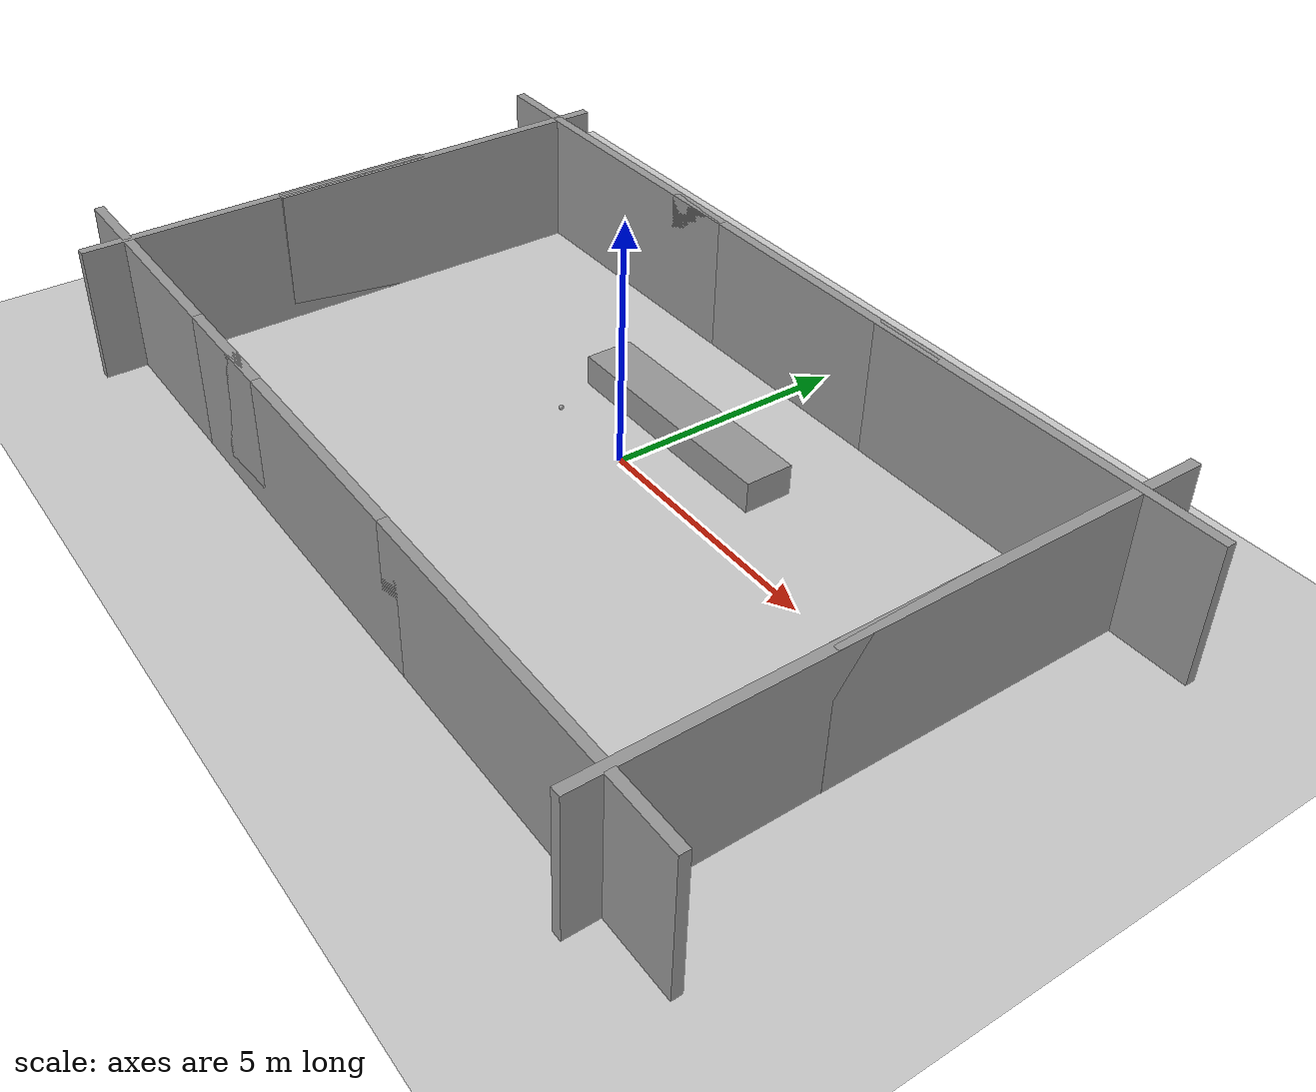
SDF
<sdf version="1.4">
 <world name="default">
  <light name="sun" type="directional">
   <pose>0 0 10 0 -0 0</pose>
   <diffuse>0.8 0.8 0.8 1</diffuse>
   <specular>0.2 0.2 0.2 1</specular>
   <attenuation>
    <range>1000</range>
    <constant>0.9</constant>
    <linear>0.01</linear>
    <quadratic>0.001</quadratic>
   </attenuation>
   <direction>-0.5 0.1 -0.9</direction>
  </light>
  <model name="ground_plane">
   <static>1</static>
   <link name="link">
    <collision name="collision">
     <geometry><plane><normal>0 0 1</normal><size>100 100</size></plane></geometry>
     <surface><friction><ode><mu>100</mu><mu2>50</mu2></ode></friction></surface>
    </collision>
    <visual name="visual">
     <cast_shadows>0</cast_shadows>
     <geometry><plane><normal>0 0 1</normal><size>100 100</size></plane></geometry>
     <material>
      <script><uri>file://media/materials/scripts/gazebo.material</uri><name>Gazebo/Grey</name></script>
     </material>
    </visual>
    <velocity_decay><linear>0</linear><angular>0</angular></velocity_decay>
   </link>
  </model>
  <physics type="ode">
   <max_step_size>0.001</max_step_size>
   <real_time_factor>1</real_time_factor>
   <real_time_update_rate>1000</real_time_update_rate>
   <gravity>0 0 -9.8</gravity>
  </physics>
  <scene><ambient>0.4 0.4 0.4 1</ambient><background>0.7 0.7 0.7 1</background><shadows>1</shadows></scene>
  <spherical_coordinates>
   <surface_model>EARTH_WGS84</surface_model>
   <latitude_deg>0</latitude_deg>
   <longitude_deg>0</longitude_deg>
   <elevation>0</elevation>
   <heading_deg>0</heading_deg>
  </spherical_coordinates>
  <model name="unit_box_1">
   <static>1</static>
   <pose>0 1.46582 0.262593 0 -0 0</pose>
   <link name="link">
    <inertial>
     <mass>100</mass>
     <inertia><ixx>17</ixx><ixy>0</ixy><ixz>0</ixz><iyy>17</iyy><iyz>0</iyz><izz>17</izz></inertia>
    </inertial>
    <collision name="collision"><geometry><box><size>5 1 0.7</size></box></geometry></collision>
    <visual name="visual">
     <geometry><box><size>5 1 0.7</size></box></geometry>
     <material>
      <script><uri>file://media/materials/scripts/gazebo.material</uri><name>Gazebo/Grey</name></script>
     </material>
    </visual>
    <velocity_decay><linear>0</linear><angular>0</angular></velocity_decay>
   </link>
  </model>
  <model name="grey_wall">
   <static>1</static>
   <link name="link">
    <pose>0 0 1.4 0 -0 0</pose>
    <collision name="collision">
     <geometry><box><size>7.5 0.2 2.8</size></box></geometry>
     <surface>
      <friction>
       <ode><mu>0.01</mu><mu2>0.01</mu2><fdir1>0 0 0</fdir1><slip1>0</slip1><slip2>0</slip2></ode>
      </friction>
     </surface>
    </collision>
    <visual name="visual">
     <cast_shadows>0</cast_shadows>
     <geometry><box><size>7.5 0.2 2.8</size></box></geometry>
     <material>
      <script>
       <uri>model://grey_wall/materials/scripts</uri>
       <uri>model://grey_wall/materials/textures</uri>
       <name>vrc/grey_wall</name>
      </script>
     </material>
    </visual>
    <velocity_decay><linear>0</linear><angular>0</angular></velocity_decay>
   </link>
   <pose>-6 4 0 0 -0 0</pose>
  </model>
  <model name="grey_wall_0">
   <static>1</static>
   <link name="link">
    <pose>0 0 1.4 0 -0 0</pose>
    <collision name="collision"><geometry><box><size>7.5 0.2 2.8</size></box></geometry></collision>
    <visual name="visual">
     <cast_shadows>0</cast_shadows>
     <geometry><box><size>7.5 0.2 2.8</size></box></geometry>
     <material>
      <script>
       <uri>model://grey_wall/materials/scripts</uri>
       <uri>model://grey_wall/materials/textures</uri>
       <name>vrc/grey_wall</name>
      </script>
     </material>
    </visual>
    <velocity_decay><linear>0</linear><angular>0</angular></velocity_decay>
   </link>
   <pose>0 4 0 0 -0 0</pose>
  </model>
  <model name="grey_wall_1">
   <static>1</static>
   <link name="link">
    <pose>0 0 1.4 0 -0 0</pose>
    <collision name="collision"><geometry><box><size>7.5 0.2 2.8</size></box></geometry></collision>
    <visual name="visual">
     <cast_shadows>0</cast_shadows>
     <geometry><box><size>7.5 0.2 2.8</size></box></geometry>
     <material>
      <script>
       <uri>model://grey_wall/materials/scripts</uri>
       <uri>model://grey_wall/materials/textures</uri>
       <name>vrc/grey_wall</name>
      </script>
     </material>
    </visual>
    <velocity_decay><linear>0</linear><angular>0</angular></velocity_decay>
   </link>
   <pose>5.97602 4.00107 0 0 -0 0.001714</pose>
  </model>
  <model name="grey_wall_2">
   <static>1</static>
   <link name="link">
    <pose>0 0 1.4 0 -0 0</pose>
    <collision name="collision"><geometry><box><size>7.5 0.2 2.8</size></box></geometry></collision>
    <visual name="visual">
     <cast_shadows>0</cast_shadows>
     <geometry><box><size>7.5 0.2 2.8</size></box></geometry>
     <material>
      <script>
       <uri>model://grey_wall/materials/scripts</uri>
       <uri>model://grey_wall/materials/textures</uri>
       <name>vrc/grey_wall</name>
      </script>
     </material>
    </visual>
    <velocity_decay><linear>0</linear><angular>0</angular></velocity_decay>
   </link>
   <pose>-6 -6 0 0 -0 0</pose>
  </model>
  <model name="grey_wall_3">
   <static>1</static>
   <link name="link">
    <pose>0 0 1.4 0 -0 0</pose>
    <collision name="collision"><geometry><box><size>7.5 0.2 2.8</size></box></geometry></collision>
    <visual name="visual">
     <cast_shadows>0</cast_shadows>
     <geometry><box><size>7.5 0.2 2.8</size></box></geometry>
     <material>
      <script>
       <uri>model://grey_wall/materials/scripts</uri>
       <uri>model://grey_wall/materials/textures</uri>
       <name>vrc/grey_wall</name>
      </script>
     </material>
    </visual>
    <velocity_decay><linear>0</linear><angular>0</angular></velocity_decay>
   </link>
   <pose>-1 -6 0 0 -0 0</pose>
  </model>
  <model name="grey_wall_4">
   <static>1</static>
   <link name="link">
    <pose>0 0 1.4 0 -0 0</pose>
    <collision name="collision"><geometry><box><size>7.5 0.2 2.8</size></box></geometry></collision>
    <visual name="visual">
     <cast_shadows>0</cast_shadows>
     <geometry><box><size>7.5 0.2 2.8</size></box></geometry>
     <material>
      <script>
       <uri>model://grey_wall/materials/scripts</uri>
       <uri>model://grey_wall/materials/textures</uri>
       <name>vrc/grey_wall</name>
      </script>
     </material>
    </visual>
    <velocity_decay><linear>0</linear><angular>0</angular></velocity_decay>
   </link>
   <pose>6 -6 0 0 -0 0</pose>
  </model>
  <model name="grey_wall_5">
   <static>1</static>
   <link name="link">
    <pose>0 0 1.4 0 -0 0</pose>
    <collision name="collision"><geometry><box><size>7.5 0.2 2.8</size></box></geometry></collision>
    <visual name="visual">
     <cast_shadows>0</cast_shadows>
     <geometry><box><size>7.5 0.2 2.8</size></box></geometry>
     <material>
      <script>
       <uri>model://grey_wall/materials/scripts</uri>
       <uri>model://grey_wall/materials/textures</uri>
       <name>vrc/grey_wall</name>
      </script>
     </material>
    </visual>
    <velocity_decay><linear>0</linear><angular>0</angular></velocity_decay>
   </link>
   <pose>-8.15243 0.97758 0 0 0 -1.56951</pose>
  </model>
  <model name="grey_wall_6">
   <static>1</static>
   <link name="link">
    <pose>0 0 1.4 0 -0 0</pose>
    <collision name="collision"><geometry><box><size>7.5 0.2 2.8</size></box></geometry></collision>
    <visual name="visual">
     <cast_shadows>0</cast_shadows>
     <geometry><box><size>7.5 0.2 2.8</size></box></geometry>
     <material>
      <script>
       <uri>model://grey_wall/materials/scripts</uri>
       <uri>model://grey_wall/materials/textures</uri>
       <name>vrc/grey_wall</name>
      </script>
     </material>
    </visual>
    <velocity_decay><linear>0</linear><angular>0</angular></velocity_decay>
   </link>
   <pose>8.10481 1.50676 0 0 0 -1.57066</pose>
  </model>
  <model name="grey_wall_7">
   <static>1</static>
   <link name="link">
    <pose>0 0 1.4 0 -0 0</pose>
    <collision name="collision"><geometry><box><size>7.5 0.2 2.8</size></box></geometry></collision>
    <visual name="visual">
     <cast_shadows>0</cast_shadows>
     <geometry><box><size>7.5 0.2 2.8</size></box></geometry>
     <material>
      <script>
       <uri>model://grey_wall/materials/scripts</uri>
       <uri>model://grey_wall/materials/textures</uri>
       <name>vrc/grey_wall</name>
      </script>
     </material>
    </visual>
    <velocity_decay><linear>0</linear><angular>0</angular></velocity_decay>
   </link>
   <pose>-8.13829 -3.19587 1e-06 0.023634 -0.000163 -1.5666</pose>
  </model>
  <model name="grey_wall_8">
   <static>1</static>
   <link name="link">
    <pose>0 0 1.4 0 -0 0</pose>
    <collision name="collision"><geometry><box><size>7.5 0.2 2.8</size></box></geometry></collision>
    <visual name="visual">
     <cast_shadows>0</cast_shadows>
     <geometry><box><size>7.5 0.2 2.8</size></box></geometry>
     <material>
      <script>
       <uri>model://grey_wall/materials/scripts</uri>
       <uri>model://grey_wall/materials/textures</uri>
       <name>vrc/grey_wall</name>
      </script>
     </material>
    </visual>
    <velocity_decay><linear>0</linear><angular>0</angular></velocity_decay>
   </link>
   <pose>8.10328 -3.01176 -3e-06 -0.003077 -8e-05 -1.56605</pose>
  </model>
  <model name="unit_sphere_1">
   <pose>-2 0 0.05 0 -0 0</pose>
   <link name="link">
    <inertial>
     <mass>1</mass>
     <inertia><ixx>1</ixx><ixy>0</ixy><ixz>0</ixz><iyy>1</iyy><iyz>0</iyz><izz>1</izz></inertia>
    </inertial>
    <collision name="collision"><geometry><sphere><radius>0.05</radius></sphere></geometry></collision>
    <visual name="visual">
     <geometry><sphere><radius>0.05</radius></sphere></geometry>
     <material>
      <script><uri>file://media/materials/scripts/gazebo.material</uri><name>Gazebo/Grey</name></script>
     </material>
    </visual>
    <velocity_decay><linear>0</linear><angular>0</angular></velocity_decay>
   </link>
   <static>0</static>
  </model>
 </world>
</sdf>
